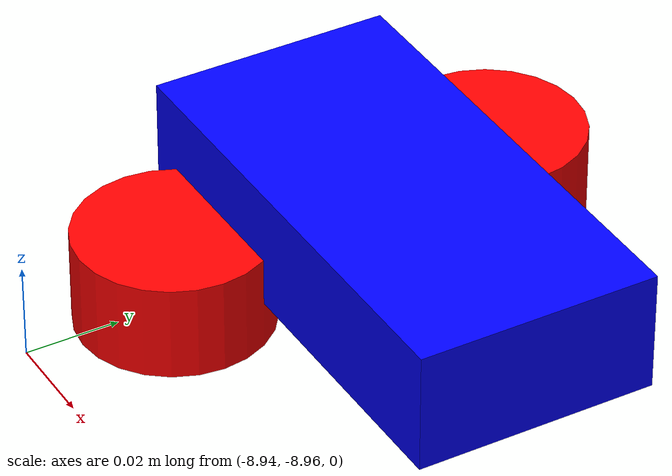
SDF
<?xml version="1.0" ?>
<sdf version="1.9">
  <model name="vehicle_blue" canonical_link="chassis">
    <!-- Place the robot so wheels rest on z=0 (ground) -->
    <!-- chassis half-height = 0.0125, wheel radius = 0.02 -> chassis z ≈ 0.02 + 0.0125 = 0.0325 -->
    <pose relative_to="world">-8.9 -8.9 0.0325 0 0 0</pose>

    <!-- Frames -->
    <frame name="lidar_frame" attached_to="chassis">
      <pose>0.08 0 0.05 0 0 0</pose>
    </frame>
    <frame name="caster_frame" attached_to="chassis">
      <pose>0.04 0 -0.01 0 0 0</pose>
    </frame>

    <!-- ===================== CHASSIS ===================== -->
    <link name="chassis">
      <pose relative_to="__model__">0 0 0 0 0 0</pose>

      <!-- Inertial: box 0.10 x 0.05 x 0.025 m, mass 0.50 kg -->
      <inertial>
        <mass>0.5</mass>
        <inertia>
          <!-- diagonal inertia of a box: (1/12)m*(b^2+c^2), etc. -->
          <ixx>0.000130</ixx>
          <iyy>0.000443</iyy>
          <izz>0.000521</izz>
          <ixy>0</ixy><ixz>0</ixz><iyz>0</iyz>
        </inertia>
      </inertial>

      <visual name="chassis_visual">
        <geometry>
          <box><size>0.10 0.05 0.025</size></box>
        </geometry>
        <material>
          <ambient>0.0 0.0 1.0 1</ambient>
          <diffuse>0.0 0.0 1.0 1</diffuse>
          <specular>0.2 0.2 0.8 1</specular>
        </material>
      </visual>

      <collision name="chassis_collision">
        <geometry>
          <box><size>0.10 0.05 0.025</size></box>
        </geometry>
        <surface>
          <friction>
            <ode>
              <mu>0.8</mu>
              <mu2>0.8</mu2>
            </ode>
          </friction>
        </surface>
      </collision>

      <!-- IMU -->
      <sensor name="imu_sensor" type="imu">
        <always_on>true</always_on>
        <update_rate>100</update_rate>
        <topic>imu</topic>
        <visualize>false</visualize>
      </sensor>

      <!-- 2D LiDAR -->
      <sensor name="gpu_lidar" type="gpu_lidar">
        <pose relative_to="lidar_frame">0 0 0 0 0 0</pose>
        <topic>scan</topic>
        <update_rate>20</update_rate>
        <ray>
          <scan>
            <horizontal>
              <samples>640</samples>
              <resolution>1</resolution>
              <min_angle>-1.396263</min_angle>   <!-- -80 deg -->
              <max_angle> 1.396263</max_angle>   <!-- +80 deg -->
            </horizontal>
            <vertical>
              <samples>1</samples>
              <resolution>1</resolution>
              <min_angle>0</min_angle>
              <max_angle>0</max_angle>
            </vertical>
          </scan>
          <range>
            <min>0.08</min>
            <max>10.0</max>
            <resolution>0.01</resolution>
          </range>
        </ray>
        <always_on>true</always_on>
        <visualize>false</visualize>
      </sensor>

      <!-- Bumper Contact -->
      <sensor name="bumper_contacts" type="contact">
        <always_on>true</always_on>
        <update_rate>200</update_rate>
        <contact>
          <collision>chassis_collision</collision>
        </contact>
        <topic>contacts</topic>
        <visualize>false</visualize>
      </sensor>
    </link>

    <!-- ===================== LEFT WHEEL ===================== -->
    <link name="left_wheel">
      <!-- wheel center at z = wheel radius so it touches the ground -->
      <!-- wheel separation is 0.07 m (y = ±0.035) -->
      <pose relative_to="chassis">-0.025 0.035 -0.0125 0 0 0</pose>
      <inertial>
        <mass>0.05</mass>
        <inertia>
          <ixx>0.000010</ixx>
          <iyy>0.000010</iyy>
          <izz>0.000008</izz>
          <ixy>0</ixy><ixz>0</ixz><iyz>0</iyz>
        </inertia>
      </inertial>
      <visual name="left_wheel_visual">
        <geometry>
          <cylinder>
            <radius>0.02</radius>
            <length>0.02</length>
          </cylinder>
        </geometry>
        <material>
          <ambient>1 0 0 1</ambient>
          <diffuse>1 0 0 1</diffuse>
          <specular>0.2 0.2 0.2 1</specular>
        </material>
      </visual>
      <collision name="left_wheel_collision">
        <geometry>
          <cylinder>
            <radius>0.02</radius>
            <length>0.02</length>
          </cylinder>
        </geometry>
        <surface>
          <friction>
            <ode>
              <mu>1.0</mu>
              <mu2>1.0</mu2>
            </ode>
          </friction>
        </surface>
      </collision>
    </link>

    <!-- ===================== RIGHT WHEEL ===================== -->
    <link name="right_wheel">
      <pose relative_to="chassis">-0.025 -0.035 -0.0125 0 0 0</pose>
      <inertial>
        <mass>0.05</mass>
        <inertia>
          <ixx>0.000010</ixx>
          <iyy>0.000010</iyy>
          <izz>0.000008</izz>
          <ixy>0</ixy><ixz>0</ixz><iyz>0</iyz>
        </inertia>
      </inertial>
      <visual name="right_wheel_visual">
        <geometry>
          <cylinder>
            <radius>0.02</radius>
            <length>0.02</length>
          </cylinder>
        </geometry>
        <material>
          <ambient>1 0 0 1</ambient>
          <diffuse>1 0 0 1</diffuse>
          <specular>0.2 0.2 0.2 1</specular>
        </material>
      </visual>
      <collision name="right_wheel_collision">
        <geometry>
          <cylinder>
            <radius>0.02</radius>
            <length>0.02</length>
          </cylinder>
        </geometry>
        <surface>
          <friction>
            <ode>
              <mu>1.0</mu>
              <mu2>1.0</mu2>
            </ode>
          </friction>
        </surface>
      </collision>
    </link>

    <!-- ===================== CASTER ===================== -->
    <link name="caster">
      <!-- caster sphere radius 0.01 -> center at z=0.01 so it touches ground -->
      <pose relative_to="caster_frame">0 0 0.01 0 0 0</pose>
      <inertial>
        <mass>0.02</mass>
        <inertia>
          <ixx>0.000001</ixx>
          <iyy>0.000001</iyy>
          <izz>0.000001</izz>
          <ixy>0</ixy><ixz>0</ixz><iyz>0</iyz>
        </inertia>
      </inertial>
      <visual name="caster_visual">
        <geometry><sphere><radius>0.01</radius></sphere></geometry>
        <material>
          <ambient>0 1 0 1</ambient>
          <diffuse>0 1 0 1</diffuse>
        </material>
      </visual>
      <collision name="caster_collision">
        <geometry><sphere><radius>0.01</radius></sphere></geometry>
        <surface>
          <friction>
            <ode>
              <mu>0.2</mu>
              <mu2>0.2</mu2>
            </ode>
          </friction>
        </surface>
      </collision>
    </link>

    <!-- ===================== JOINTS ===================== -->
    <!-- Wheels rotate about their local Y axis (forward/back) -->
    <joint name="left_wheel_joint" type="revolute">
      <parent>chassis</parent>
      <child>left_wheel</child>
      <axis>
        <xyz>0 1 0</xyz>
        <limit>
          <lower>-1e16</lower>
          <upper> 1e16</upper>
        </limit>
      </axis>
    </joint>

    <joint name="right_wheel_joint" type="revolute">
      <parent>chassis</parent>
      <child>right_wheel</child>
      <axis>
        <xyz>0 1 0</xyz>
        <limit>
          <lower>-1e16</lower>
          <upper> 1e16</upper>
        </limit>
      </axis>
    </joint>

    <!-- Caster free swivel -->
    <joint name="caster_joint" type="ball">
      <parent>chassis</parent>
      <child>caster</child>
    </joint>

    <!-- ===================== DIFF-DRIVE PLUGIN ===================== -->
    <plugin filename="gz-sim-diff-drive-system" name="gz::sim::systems::DiffDrive">
      <!-- Match geometry: separation = 0.07 m (y=±0.035), radius = 0.02 m -->
      <left_joint>left_wheel_joint</left_joint>
      <right_joint>right_wheel_joint</right_joint>
      <wheel_separation>0.07</wheel_separation>
      <wheel_radius>0.02</wheel_radius>

      <!-- Topics (bridge these to ROS 2) -->
      <topic>cmd_vel</topic>
      <odometry_topic>odom</odometry_topic>

      <!-- Frames (optional but helpful) -->
      <odom_frame>odom</odom_frame>
      <robot_base_frame>base_link</robot_base_frame>

      <!-- Rates -->
      <odom_publish_frequency>50</odom_publish_frequency>
      <cmd_vel_timeout>0.5</cmd_vel_timeout>

      <!-- Motion limits (feel free to tune) -->
      <maximum_linear_velocity>1.0</maximum_linear_velocity>
      <maximum_angular_velocity>2.0</maximum_angular_velocity>
    </plugin>

    <!-- A base_link frame attached to chassis (for TF consistency) -->
    <frame name="base_link" attached_to="chassis"/>
  </model>
</sdf>
